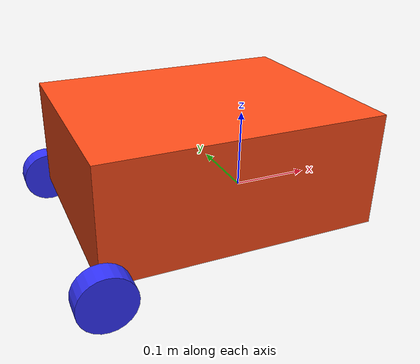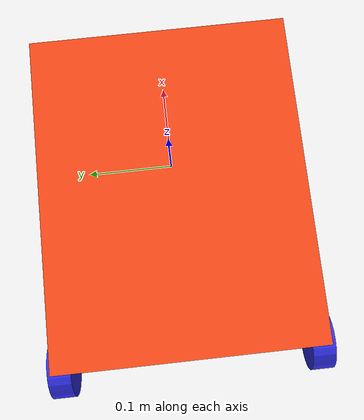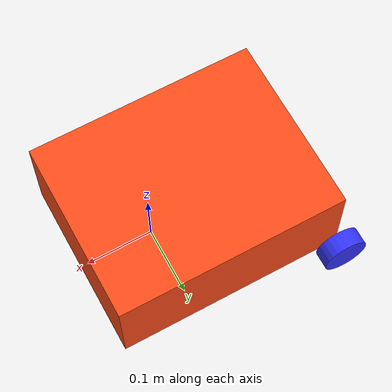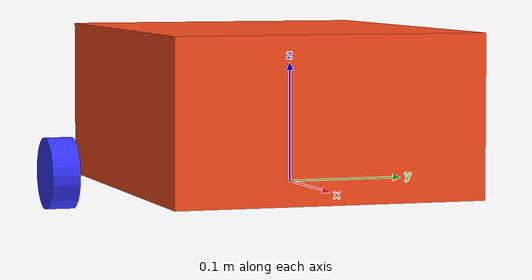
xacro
<?xml version="1.0"?>
<robot xmlns:xacro="http://www.ros.org/wiki/xacro" name="inmoov">

    <xacro:include filename="inertial_macros.xacro"/>
    <xacro:include filename="robot_gz_sim.xacro"/>

    <!-- Pi Constant -->

    <xacro:property name="chassis_length" value="0.335"/>
    <xacro:property name="chassis_width" value="0.265"/>
    <xacro:property name="chassis_height" value="0.138"/>
    <xacro:property name="chassis_mass" value="1.0"/>
    <xacro:property name="wheel_radius" value="0.033"/>
    <xacro:property name="wheel_thickness" value="0.026"/>
    <xacro:property name="wheel_mass" value="0.05"/>
    <xacro:property name="wheel_offset_x" value="0.226"/>
    <xacro:property name="wheel_offset_y" value="0.1485"/>
    <xacro:property name="wheel_offset_z" value="0.01"/>
    <xacro:property name="caster_wheel_radius" value="0.01"/>
    <xacro:property name="caster_wheel_mass" value="0.01"/>
    <xacro:property name="caster_wheel_offset_x" value="0.075"/>
    <xacro:property name="caster_wheel_offset_z" value="${wheel_offset_z - wheel_radius + caster_wheel_radius}"/>

    <material name="white">
        <color rgba="1 1 1 1" />
    </material>

    <material name="orange">
        <color rgba="1 0.3 0.1 1"/>
    </material>

    <material name="blue">
        <color rgba="0.2 0.2 1 1"/>
    </material>

    <material name="black">
        <color rgba="0 0 0 1"/>
    </material>

    <material name="red">
        <color rgba="1 0 0 1"/>
    </material>

    <!-- BASE LINK -->
    <!-- I believe this is what is linking to the world
    but that is yet to come -->

    <!-- BASE_FOOTPRINT LINK -->
    <link name="base_footprint"></link>

    <joint name="base_link_joint" type="fixed">
        <parent link="base_footprint"/>
        <child link="chassis"/>
        <!-- I am going ot use the wheel link offsets from before -->
        <origin xyz="${-wheel_offset_x} 0 ${-wheel_offset_z}"/>
    </joint>

    <!-- CHASSIS LINK -->
    <!-- since changing to the base_footprint model for the -->
    <!-- more recent versions of gazebo, we don't need this link -->

    <link name="chassis">
        <visual>
            <origin xyz="${chassis_length/2} 0 ${chassis_height/2}"/>
            <geometry>
                <box size="${chassis_length} ${chassis_width} ${chassis_height}"/>
            </geometry>
            <material name="orange"/>
        </visual>

        <collision>
            <origin xyz="${chassis_length/2} 0 ${chassis_height/2}"/>
            <geometry>
                <box size="${chassis_length} ${chassis_width} ${chassis_height}"/>
            </geometry>
        </collision>

        <xacro:inertial_box mass="0.5" x="${chassis_length}" y="${chassis_width}" z="${chassis_height}">
            <origin xyz="${chassis_length/2} 0 ${chassis_height/2}" rpy="0 0 0"/>
        </xacro:inertial_box>
    </link>

    <!-- LEFT WHEEL LINK -->

    <joint name="left_wheel_joint" type="continuous">
        <parent link="chassis"/>
        <child link="left_wheel"/>
        <origin xyz="0 ${wheel_offset_y} 0" rpy="-${pi/2} 0 0" />
        <axis xyz="0 0 1"/>
    </joint>

    <link name="left_wheel">
        <visual>
            <geometry>
                <cylinder radius="${wheel_radius}" length="${wheel_thickness}"/>
            </geometry>
            <material name="blue"/>
        </visual>
        <collision>
            <geometry>
                <sphere radius="${wheel_radius}"/>
            </geometry>
        </collision>
        <xacro:inertial_cylinder mass="${wheel_mass}" length="${wheel_thickness}" radius="${wheel_radius}">
            <origin xyz="0 0 0" rpy="0 0 0"/>
        </xacro:inertial_cylinder>
    </link>

    <!-- RIGHT WHEEL LINK -->

    <joint name="right_wheel_joint" type="continuous">
        <parent link="chassis"/>
        <child link="right_wheel"/>
        <origin xyz="0 ${-wheel_offset_y} 0" rpy="${pi/2} 0 0" />
        <axis xyz="0 0 -1"/>
    </joint>

    <link name="right_wheel">
        <visual>
            <geometry>
                <cylinder radius="${wheel_radius}" length="${wheel_thickness}"/>
            </geometry>
            <material name="blue"/>
        </visual>
        <collision>
            <geometry>
                <sphere radius="${wheel_radius}"/>
            </geometry>
        </collision>
        <xacro:inertial_cylinder mass="${wheel_mass}" length="${wheel_thickness}" radius="${wheel_radius}">
            <origin xyz="0 0 0" rpy="0 0 0"/>
        </xacro:inertial_cylinder>
    </link>

    <!-- CASTER WHEEL LINK -->

    <joint name="caster_wheel_joint" type="fixed">
        <parent link="chassis"/>
        <child link="caster_wheel"/>
        <origin xyz="${caster_wheel_offset_x} 0 ${caster_wheel_offset_z}"/>
    </joint>

    <link name="caster_wheel">
        <visual>
            <geometry>
                <sphere radius="${caster_wheel_radius}"/>
            </geometry>
            <material name="white"/>
        </visual>
        <collision>
            <geometry>
                <sphere radius="${caster_wheel_radius}"/>
            </geometry>
        </collision>
        <xacro:inertial_sphere mass="${caster_wheel_mass}" radius="${caster_wheel_radius}">
            <origin xyz="0 0 0" rpy="0 0 0"/>
        </xacro:inertial_sphere>
    </link>

</robot>

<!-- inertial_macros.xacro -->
<robot xmlns:xacro="http://www.ros.org/wiki/xacro" name="inmoov">

    <!-- Specify some standard inertial calculations https://en.wikipedia.org/wiki/List_of_moments_of_inertia -->
    <!-- These make use of xacro's mathematical functionality -->

    <xacro:macro name="inertial_sphere" params="mass radius *origin">
        <inertial>
            <xacro:insert_block name="origin"/>
            <mass value="${mass}" />
            <inertia ixx="${(2/5) * mass * (radius*radius)}" ixy="0.0" ixz="0.0"
                    iyy="${(2/5) * mass * (radius*radius)}" iyz="0.0"
                    izz="${(2/5) * mass * (radius*radius)}" />
        </inertial>
    </xacro:macro>

    <xacro:macro name="inertial_box" params="mass x y z *origin">
        <inertial>
            <xacro:insert_block name="origin"/>
            <mass value="${mass}" />
            <inertia ixx="${(1/12) * mass * (y*y+z*z)}" ixy="0.0" ixz="0.0"
                    iyy="${(1/12) * mass * (x*x+z*z)}" iyz="0.0"
                    izz="${(1/12) * mass * (x*x+y*y)}" />
        </inertial>
    </xacro:macro>

    <xacro:macro name="inertial_cylinder" params="mass length radius *origin">
        <inertial>
            <xacro:insert_block name="origin"/>
            <mass value="${mass}" />
            <inertia ixx="${(1/12) * mass * (3*radius*radius + length*length)}" ixy="0.0" ixz="0.0"
                    iyy="${(1/12) * mass * (3*radius*radius + length*length)}" iyz="0.0"
                    izz="${(1/2) * mass * (radius*radius)}" />
        </inertial>
    </xacro:macro>

</robot>
